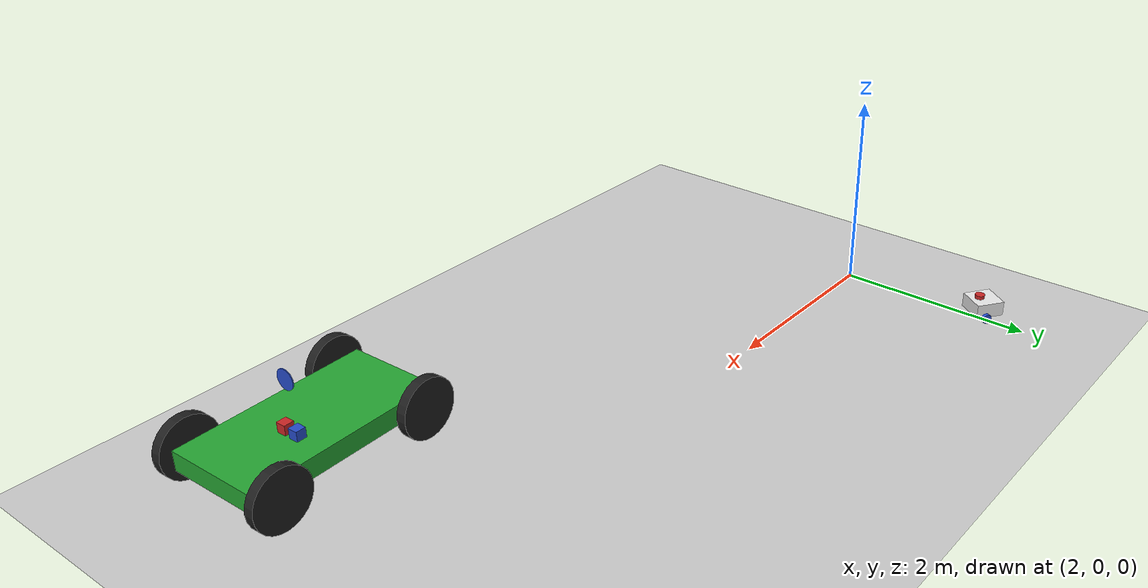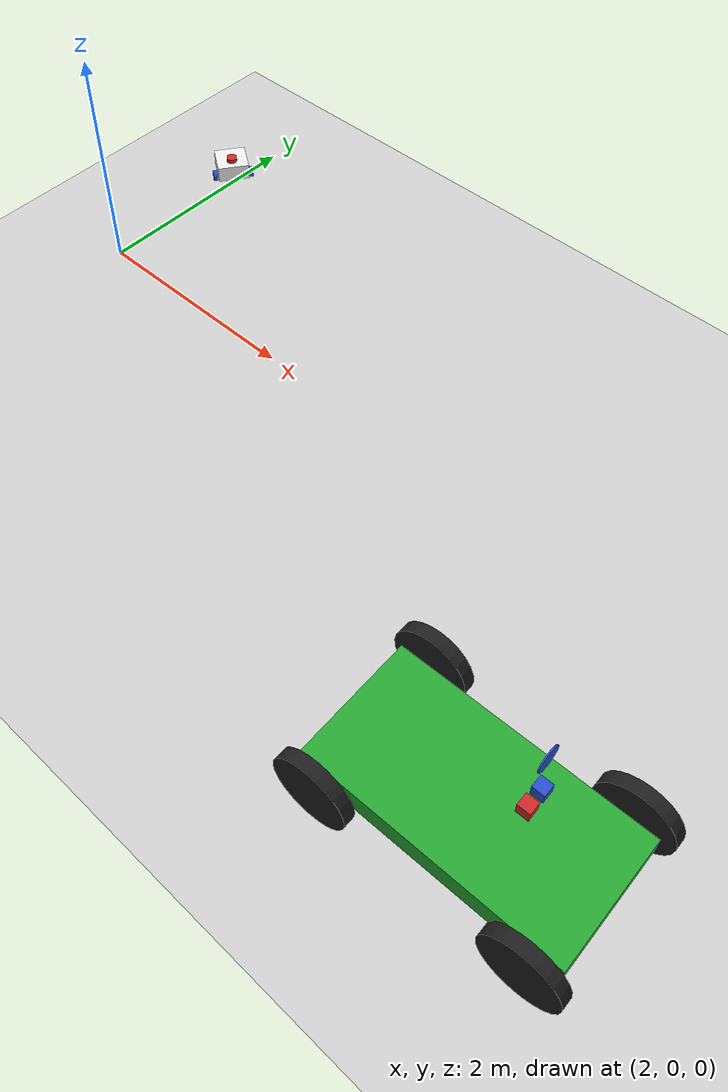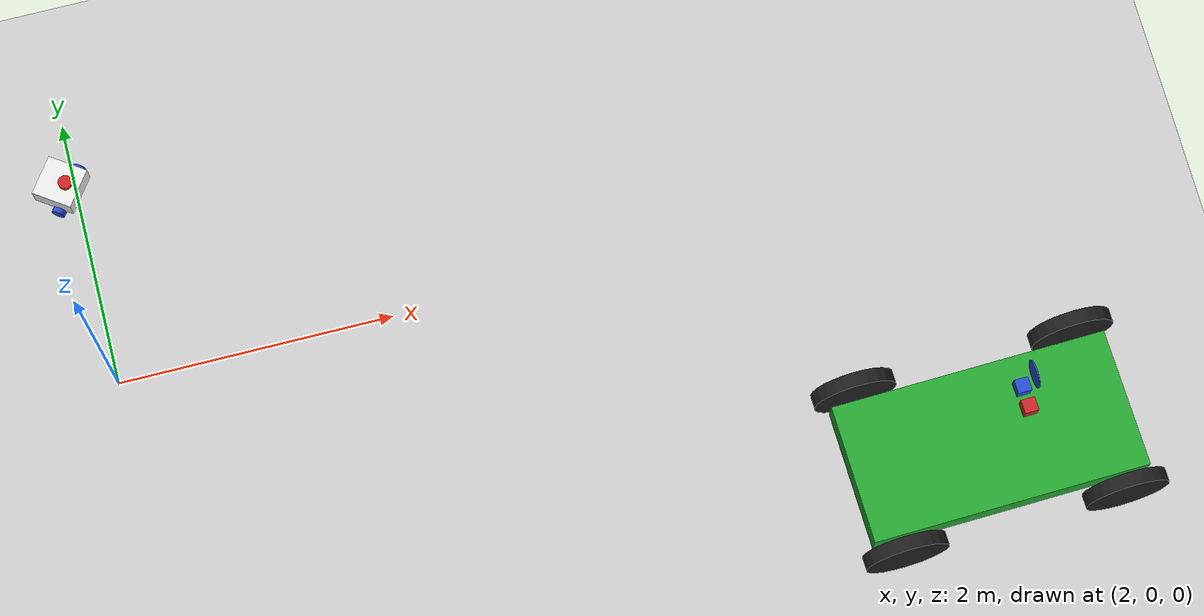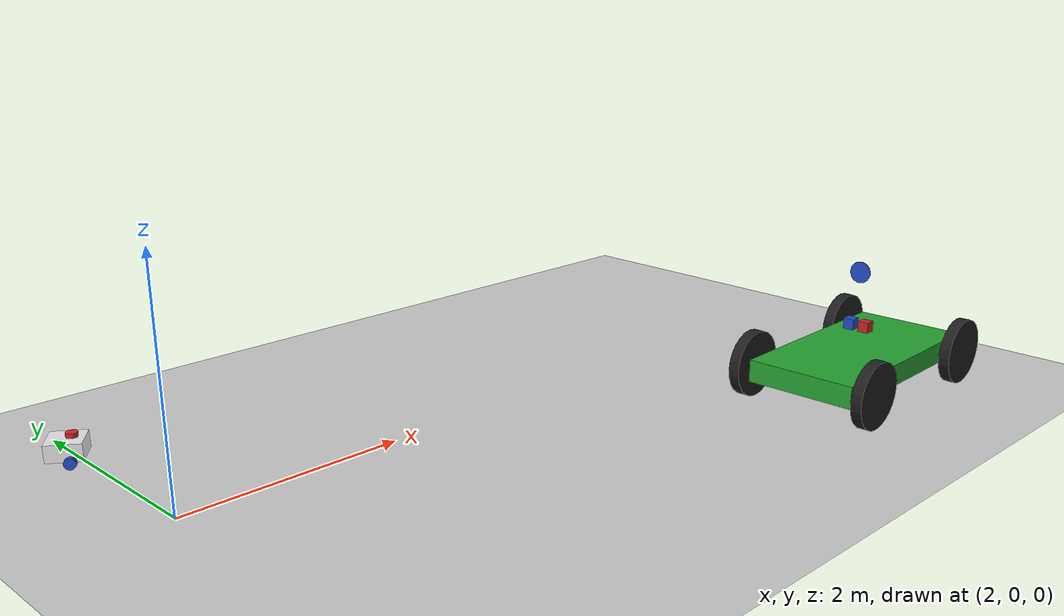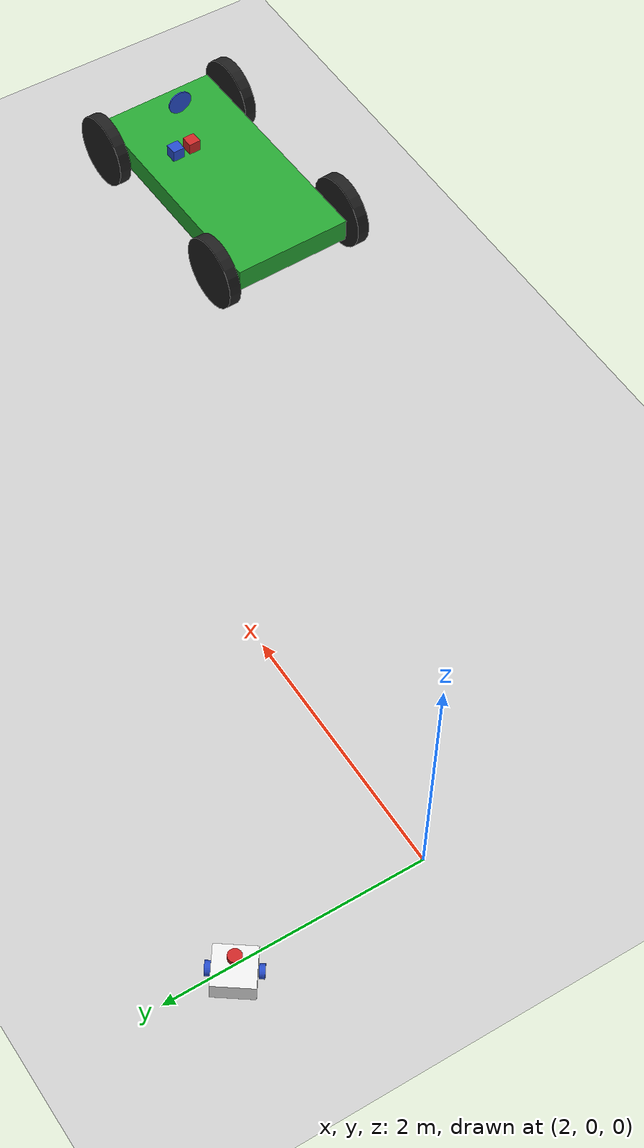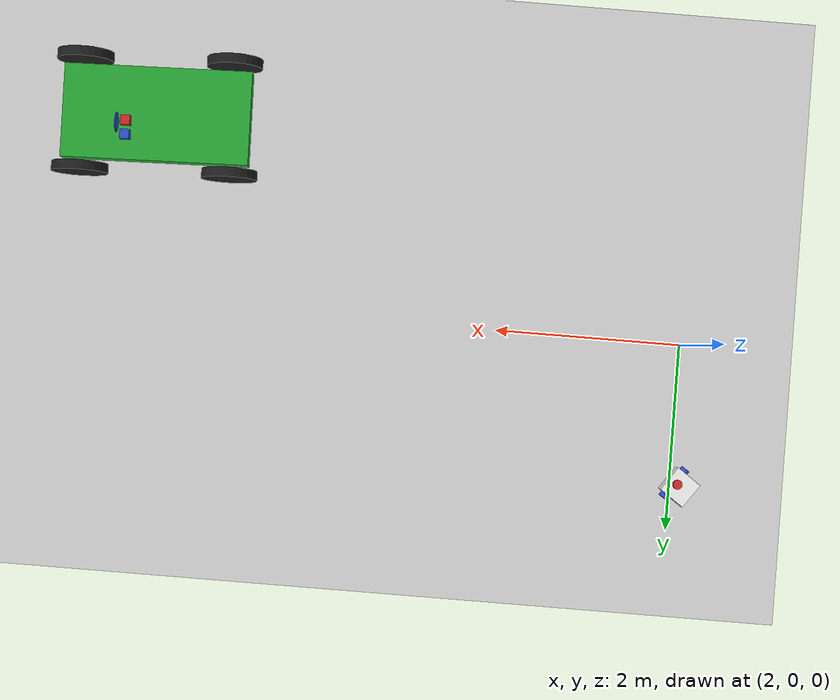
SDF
<sdf version="1.7">
 <world name="default">
  <light name="sun" type="directional">
   <pose>0 0 10 0 -0 0</pose>
   <diffuse>0.8 0.8 0.8 1</diffuse>
   <specular>0.2 0.2 0.2 1</specular>
   <attenuation>
    <range>1000</range>
    <constant>0.9</constant>
    <linear>0.01</linear>
    <quadratic>0.001</quadratic>
   </attenuation>
   <direction>-0.5 0.1 -0.9</direction>
   <spot><inner_angle>0</inner_angle><outer_angle>0</outer_angle><falloff>0</falloff></spot>
  </light>
  <model name="ground_plane">
   <static>1</static>
   <link name="link">
    <collision name="collision">
     <geometry><plane><normal>0 0 1</normal><size>100 100</size></plane></geometry>
     <surface>
      <contact><collide_bitmask>65535</collide_bitmask></contact>
      <friction><ode><mu>100</mu><mu2>50</mu2></ode></friction>
     </surface>
    </collision>
    <visual name="visual">
     <cast_shadows>0</cast_shadows>
     <geometry><plane><normal>0 0 1</normal><size>100 100</size></plane></geometry>
     <material>
      <script><uri>file://media/materials/scripts/gazebo.material</uri><name>Gazebo/Grey</name></script>
     </material>
    </visual>
   </link>
  </model>
  <gravity>0 0 -9.8</gravity>
  <magnetic_field>6e-06 2.3e-05 -4.2e-05</magnetic_field>
  <atmosphere type="adiabatic"/>
  <physics type="ode">
   <max_step_size>0.001</max_step_size>
   <real_time_factor>1</real_time_factor>
   <real_time_update_rate>1000</real_time_update_rate>
  </physics>
  <scene><ambient>0.4 0.4 0.4 1</ambient><background>0.7 0.7 0.7 1</background><shadows>1</shadows></scene>
  <audio><device>default</device></audio>
  <spherical_coordinates>
   <surface_model>EARTH_WGS84</surface_model>
   <latitude_deg>0</latitude_deg>
   <longitude_deg>0</longitude_deg>
   <elevation>0</elevation>
   <heading_deg>0</heading_deg>
  </spherical_coordinates>
  <model name="my_bot">
   <link name="base_link">
    <inertial>
     <pose>0.055714 0 0.078571 0 -0 0</pose>
     <mass>0.7</mass>
     <inertia>
      <ixx>0.0064169</ixx>
      <ixy>0</ixy>
      <ixz>0.00118929</ixz>
      <iyy>0.00745405</iyy>
      <iyz>0</iyz>
      <izz>0.00876214</izz>
     </inertia>
    </inertial>
    <collision name="base_link_fixed_joint_lump__chasis_collision">
     <pose>0.05 0 0.075 0 -0 0</pose>
     <geometry><box><size>0.3 0.3 0.15</size></box></geometry>
    </collision>
    <collision name="base_link_fixed_joint_lump__caster_wheel_collision_1">
     <pose>0.14 0 0 0 -0 0</pose>
     <geometry><sphere><radius>0.05</radius></sphere></geometry>
     <surface><friction><ode><mu>0.001</mu><mu2>0.01</mu2></ode></friction></surface>
    </collision>
    <collision name="base_link_fixed_joint_lump__laser_frame_collision_2">
     <pose>0 0 0.175 0 -0 0</pose>
     <geometry><cylinder><length>0.04</length><radius>0.05</radius></cylinder></geometry>
    </collision>
    <visual name="base_link_fixed_joint_lump__chasis_visual">
     <pose>0.05 0 0.075 0 -0 0</pose>
     <geometry><box><size>0.3 0.3 0.15</size></box></geometry>
     <material>
      <script><name>Gazebo/white</name><uri>file://media/materials/scripts/gazebo.material</uri></script>
     </material>
    </visual>
    <visual name="base_link_fixed_joint_lump__caster_wheel_visual_1">
     <pose>0.14 0 0 0 -0 0</pose>
     <geometry><sphere><radius>0.05</radius></sphere></geometry>
     <material>
      <script><name>Gazebo/Black</name><uri>file://media/materials/scripts/gazebo.material</uri></script>
     </material>
    </visual>
    <visual name="base_link_fixed_joint_lump__laser_frame_visual_2">
     <pose>0 0 0.175 0 -0 0</pose>
     <geometry><cylinder><length>0.04</length><radius>0.05</radius></cylinder></geometry>
     <material>
      <script><name>Gazebo/Red</name><uri>file://media/materials/scripts/gazebo.material</uri></script>
     </material>
    </visual>
    <sensor name="laser" type="ray">
     <visualize>1</visualize>
     <update_rate>10</update_rate>
     <ray>
      <scan>
       <horizontal>
        <samples>360</samples>
        <min_angle>-3.14</min_angle>
        <max_angle>3.14</max_angle>
        <resolution>1</resolution>
       </horizontal>
       <vertical><samples>1</samples><min_angle>0</min_angle><max_angle>0</max_angle></vertical>
      </scan>
      <range><min>0.3</min><max>12</max></range>
     </ray>
     <plugin name="laser_controller" filename="libgazebo_ros_ray_sensor.so">
      <ros><argument>~/out:=scan</argument></ros>
      <output_type>sensor_msgs/LaserScan</output_type>
      <frame_name>laser_frame</frame_name>
     </plugin>
     <pose>0 0 0.175 0 -0 0</pose>
    </sensor>
   </link>
   <joint name="left_wheel_joint" type="revolute">
    <pose relative_to="base_link">0 0.175 0 -1.5708 0 0</pose>
    <parent>base_link</parent>
    <child>left_wheel</child>
    <axis>
     <xyz>0 0 1</xyz>
     <limit><lower>-1e+16</lower><upper>1e+16</upper></limit>
     <dynamics><spring_reference>0</spring_reference><spring_stiffness>0</spring_stiffness></dynamics>
    </axis>
   </joint>
   <link name="left_wheel">
    <pose relative_to="left_wheel_joint">0 0 0 0 -0 0</pose>
    <inertial>
     <mass>0.1</mass>
     <inertia>
      <ixx>7.58333e-05</ixx>
      <ixy>0</ixy>
      <ixz>0</ixz>
      <iyy>7.58333e-05</iyy>
      <iyz>0</iyz>
      <izz>0.000125</izz>
     </inertia>
    </inertial>
    <collision name="left_wheel_collision">
     <geometry><cylinder><length>0.04</length><radius>0.05</radius></cylinder></geometry>
    </collision>
    <visual name="left_wheel_visual">
     <geometry><cylinder><length>0.04</length><radius>0.05</radius></cylinder></geometry>
     <material>
      <script><name>Gazebo/Blue</name><uri>file://media/materials/scripts/gazebo.material</uri></script>
     </material>
    </visual>
   </link>
   <joint name="right_wheel_joint" type="revolute">
    <pose relative_to="base_link">0 -0.175 0 1.5708 -0 0</pose>
    <parent>base_link</parent>
    <child>right_wheel</child>
    <axis>
     <xyz>0 0 -1</xyz>
     <limit><lower>-1e+16</lower><upper>1e+16</upper></limit>
     <dynamics><spring_reference>0</spring_reference><spring_stiffness>0</spring_stiffness></dynamics>
    </axis>
   </joint>
   <link name="right_wheel">
    <pose relative_to="right_wheel_joint">0 0 0 0 -0 0</pose>
    <inertial>
     <mass>0.1</mass>
     <inertia>
      <ixx>7.58333e-05</ixx>
      <ixy>0</ixy>
      <ixz>0</ixz>
      <iyy>7.58333e-05</iyy>
      <iyz>0</iyz>
      <izz>0.000125</izz>
     </inertia>
    </inertial>
    <collision name="right_wheel_collision">
     <geometry><cylinder><length>0.04</length><radius>0.05</radius></cylinder></geometry>
    </collision>
    <visual name="right_wheel_visual">
     <geometry><cylinder><length>0.04</length><radius>0.05</radius></cylinder></geometry>
     <material>
      <script><name>Gazebo/Blue</name><uri>file://media/materials/scripts/gazebo.material</uri></script>
     </material>
    </visual>
   </link>
   <static>0</static>
   <plugin name="diff_drive" filename="libgazebo_ros_diff_drive.so">
    <left_joint>left_wheel_joint</left_joint>
    <right_joint>right_wheel_joint</right_joint>
    <wheel_seperation>0.35</wheel_seperation>
    <wheel_diameter>0.1</wheel_diameter>
    <max_wheel_torque>200</max_wheel_torque>
    <max_wheel_acceleration>10.0</max_wheel_acceleration>
    <odometry_frame>odom</odometry_frame>
    <robot_base_frame>base_link</robot_base_frame>
    <publish_odom>1</publish_odom>
    <publish_odom_tf>1</publish_odom_tf>
    <publish_wheel_tf>1</publish_wheel_tf>
   </plugin>
   <pose>1.95216 1.48842 0.050001 -3e-06 8e-06 2.52488</pose>
  </model>
  <model name="car">
   <link name="chassis">
    <pose>0 0 0.3 0 -0 0</pose>
    <collision name="collision"><geometry><box><size>2 1 0.2</size></box></geometry></collision>
    <visual name="visual">
     <geometry><box><size>2 1 0.2</size></box></geometry>
     <material>
      <script><uri>file://media/materials/scripts/gazebo.material</uri><name>Gazebo/Green</name></script>
     </material>
    </visual>
    <inertial>
     <inertia><ixx>1</ixx><ixy>0</ixy><ixz>0</ixz><iyy>1</iyy><iyz>0</iyz><izz>1</izz></inertia>
     <mass>1</mass>
    </inertial>
   </link>
   <link name="front_left_wheel">
    <pose>0.8 0.6 0.3 -0 1.5707 1.5707</pose>
    <collision name="collision">
     <geometry><cylinder><radius>0.3</radius><length>0.1</length></cylinder></geometry>
    </collision>
    <visual name="visual">
     <geometry><cylinder><radius>0.3</radius><length>0.1</length></cylinder></geometry>
     <material>
      <script><uri>file://media/materials/scripts/gazebo.material</uri><name>Gazebo/Black</name></script>
     </material>
    </visual>
    <inertial>
     <inertia><ixx>1</ixx><ixy>0</ixy><ixz>0</ixz><iyy>1</iyy><iyz>0</iyz><izz>1</izz></inertia>
     <mass>1</mass>
    </inertial>
   </link>
   <link name="front_right_wheel">
    <pose>0.8 -0.6 0.3 -0 1.5707 1.5707</pose>
    <collision name="collision">
     <geometry><cylinder><radius>0.3</radius><length>0.1</length></cylinder></geometry>
    </collision>
    <visual name="visual">
     <geometry><cylinder><radius>0.3</radius><length>0.1</length></cylinder></geometry>
     <material>
      <script><uri>file://media/materials/scripts/gazebo.material</uri><name>Gazebo/Black</name></script>
     </material>
    </visual>
    <inertial>
     <inertia><ixx>1</ixx><ixy>0</ixy><ixz>0</ixz><iyy>1</iyy><iyz>0</iyz><izz>1</izz></inertia>
     <mass>1</mass>
    </inertial>
   </link>
   <link name="back_right_wheel">
    <pose>-0.8 -0.6 0.3 -0 1.5707 1.5707</pose>
    <collision name="collision">
     <geometry><cylinder><radius>0.3</radius><length>0.1</length></cylinder></geometry>
    </collision>
    <visual name="visual">
     <geometry><cylinder><radius>0.3</radius><length>0.1</length></cylinder></geometry>
     <material>
      <script><uri>file://media/materials/scripts/gazebo.material</uri><name>Gazebo/Black</name></script>
     </material>
    </visual>
    <inertial>
     <inertia><ixx>1</ixx><ixy>0</ixy><ixz>0</ixz><iyy>1</iyy><iyz>0</iyz><izz>1</izz></inertia>
     <mass>1</mass>
    </inertial>
   </link>
   <link name="back_left_wheel">
    <pose>-0.8 0.6 0.3 -0 1.5707 1.5707</pose>
    <collision name="collision">
     <geometry><cylinder><radius>0.3</radius><length>0.1</length></cylinder></geometry>
    </collision>
    <visual name="visual">
     <geometry><cylinder><radius>0.3</radius><length>0.1</length></cylinder></geometry>
     <material>
      <script><uri>file://media/materials/scripts/gazebo.material</uri><name>Gazebo/Black</name></script>
     </material>
    </visual>
    <inertial>
     <inertia><ixx>1</ixx><ixy>0</ixy><ixz>0</ixz><iyy>1</iyy><iyz>0</iyz><izz>1</izz></inertia>
     <mass>1</mass>
    </inertial>
   </link>
   <link name="gas_pedal">
    <pose>0.3 0.1 0.5 0 -0 0</pose>
    <collision name="collision"><geometry><box><size>0.1 0.1 0.1</size></box></geometry></collision>
    <visual name="visual">
     <geometry><box><size>0.1 0.1 0.1</size></box></geometry>
     <material>
      <script><uri>file://media/materials/scripts/gazebo.material</uri><name>Gazebo/Red</name></script>
     </material>
    </visual>
    <inertial>
     <inertia><ixx>1</ixx><ixy>0</ixy><ixz>0</ixz><iyy>1</iyy><iyz>0</iyz><izz>1</izz></inertia>
     <mass>1</mass>
    </inertial>
   </link>
   <link name="brake_pedal">
    <pose>0.3 0.25 0.5 0 -0 0</pose>
    <collision name="collision"><geometry><box><size>0.1 0.1 0.1</size></box></geometry></collision>
    <visual name="visual">
     <geometry><box><size>0.1 0.1 0.1</size></box></geometry>
     <material>
      <script><uri>file://media/materials/scripts/gazebo.material</uri><name>Gazebo/Blue</name></script>
     </material>
    </visual>
    <inertial>
     <inertia><ixx>1</ixx><ixy>0</ixy><ixz>0</ixz><iyy>1</iyy><iyz>0</iyz><izz>1</izz></inertia>
     <mass>1</mass>
    </inertial>
   </link>
   <link name="steering_wheel">
    <pose>0.3 0.2 1 0 1.5707 0</pose>
    <collision name="collision">
     <geometry><cylinder><radius>0.1</radius><length>0.01</length></cylinder></geometry>
    </collision>
    <visual name="visual">
     <geometry><cylinder><radius>0.1</radius><length>0.01</length></cylinder></geometry>
     <material>
      <script><uri>file://media/materials/scripts/gazebo.material</uri><name>Gazebo/Blue</name></script>
     </material>
    </visual>
    <inertial>
     <inertia><ixx>1</ixx><ixy>0</ixy><ixz>0</ixz><iyy>1</iyy><iyz>0</iyz><izz>1</izz></inertia>
     <mass>1</mass>
    </inertial>
   </link>
   <joint name="gas_joint" type="prismatic">
    <parent>chassis</parent>
    <child>gas_pedal</child>
    <axis>
     <xyz expressed_in="__model__">1 0 0</xyz>
     <limit><lower>0</lower><upper>0.2</upper></limit>
     <dynamics><spring_reference>0</spring_reference><spring_stiffness>0</spring_stiffness></dynamics>
    </axis>
   </joint>
   <joint name="brake_joint" type="prismatic">
    <parent>chassis</parent>
    <child>brake_pedal</child>
    <axis>
     <xyz expressed_in="__model__">1 0 0</xyz>
     <limit><lower>0</lower><upper>0.2</upper></limit>
     <dynamics><spring_reference>0</spring_reference><spring_stiffness>0</spring_stiffness></dynamics>
    </axis>
   </joint>
   <joint name="steering_joint" type="revolute">
    <parent>chassis</parent>
    <child>steering_wheel</child>
    <axis>
     <xyz expressed_in="__model__">1 0 0</xyz>
     <limit><lower>-7.853</lower><upper>7.853</upper></limit>
     <dynamics><spring_reference>0</spring_reference><spring_stiffness>0</spring_stiffness></dynamics>
    </axis>
   </joint>
   <joint name="front_left_joint" type="revolute2">
    <parent>chassis</parent>
    <child>front_left_wheel</child>
    <axis>
     <xyz expressed_in="__model__">0 0 1</xyz>
     <limit><lower>-1.54469e-06</lower><upper>-1.54469e-06</upper></limit>
     <dynamics><spring_reference>0</spring_reference><spring_stiffness>0</spring_stiffness></dynamics>
    </axis>
    <axis2>
     <xyz expressed_in="__model__">0 1 0</xyz>
     <limit><upper>1e+16</upper><lower>-1e+16</lower></limit>
     <dynamics><spring_reference>0</spring_reference><spring_stiffness>0</spring_stiffness></dynamics>
    </axis2>
    <physics><ode><limit><cfm>0</cfm><erp>0.9</erp></limit></ode></physics>
   </joint>
   <joint name="front_right_joint" type="revolute2">
    <parent>chassis</parent>
    <child>front_right_wheel</child>
    <axis>
     <xyz expressed_in="__model__">0 0 1</xyz>
     <limit><lower>-1.54469e-06</lower><upper>-1.54469e-06</upper></limit>
     <dynamics><spring_reference>0</spring_reference><spring_stiffness>0</spring_stiffness></dynamics>
    </axis>
    <axis2>
     <xyz expressed_in="__model__">0 1 0</xyz>
     <limit><upper>1e+16</upper><lower>-1e+16</lower></limit>
     <dynamics><spring_reference>0</spring_reference><spring_stiffness>0</spring_stiffness></dynamics>
    </axis2>
    <physics><ode><limit><cfm>0</cfm><erp>0.9</erp></limit></ode></physics>
   </joint>
   <joint name="back_right_joint" type="revolute2">
    <parent>chassis</parent>
    <child>back_right_wheel</child>
    <axis>
     <xyz expressed_in="__model__">0 0 1</xyz>
     <limit><lower>0</lower><upper>0</upper></limit>
     <dynamics><spring_reference>0</spring_reference><spring_stiffness>0</spring_stiffness></dynamics>
    </axis>
    <axis2>
     <xyz expressed_in="__model__">0 1 0</xyz>
     <limit><upper>1e+16</upper><lower>-1e+16</lower></limit>
     <dynamics><spring_reference>0</spring_reference><spring_stiffness>0</spring_stiffness></dynamics>
    </axis2>
    <physics><ode><limit><cfm>0</cfm><erp>0.9</erp></limit></ode></physics>
   </joint>
   <joint name="back_left_joint" type="revolute2">
    <parent>chassis</parent>
    <child>back_left_wheel</child>
    <axis>
     <xyz expressed_in="__model__">0 0 1</xyz>
     <limit><lower>0</lower><upper>0</upper></limit>
     <dynamics><spring_reference>0</spring_reference><spring_stiffness>0</spring_stiffness></dynamics>
    </axis>
    <axis2>
     <xyz expressed_in="__model__">0 1 0</xyz>
     <limit><upper>1e+16</upper><lower>-1e+16</lower></limit>
     <dynamics><spring_reference>0</spring_reference><spring_stiffness>0</spring_stiffness></dynamics>
    </axis2>
    <physics><ode><limit><cfm>0</cfm><erp>0.9</erp></limit></ode></physics>
   </joint>
   <plugin name="vehicle" filename="libVehiclePlugin.so">
    <front_left>front_left_joint</front_left>
    <front_right>front_right_joint</front_right>
    <back_left>back_left_joint</back_left>
    <back_right>back_right_joint</back_right>
    <gas>gas_joint</gas>
    <brake>brake_joint</brake>
    <steering>steering_joint</steering>
    <front_power>10</front_power>
    <rear_power>10</rear_power>
    <tire_angle_range>0.5</tire_angle_range>
    <max_speed>10</max_speed>
    <aero_load>0.1</aero_load>
   </plugin>
   <pose>7.80743 -1.99845 1.1e-05 -8e-06 5e-06 0.029959</pose>
  </model>
 </world>
</sdf>
